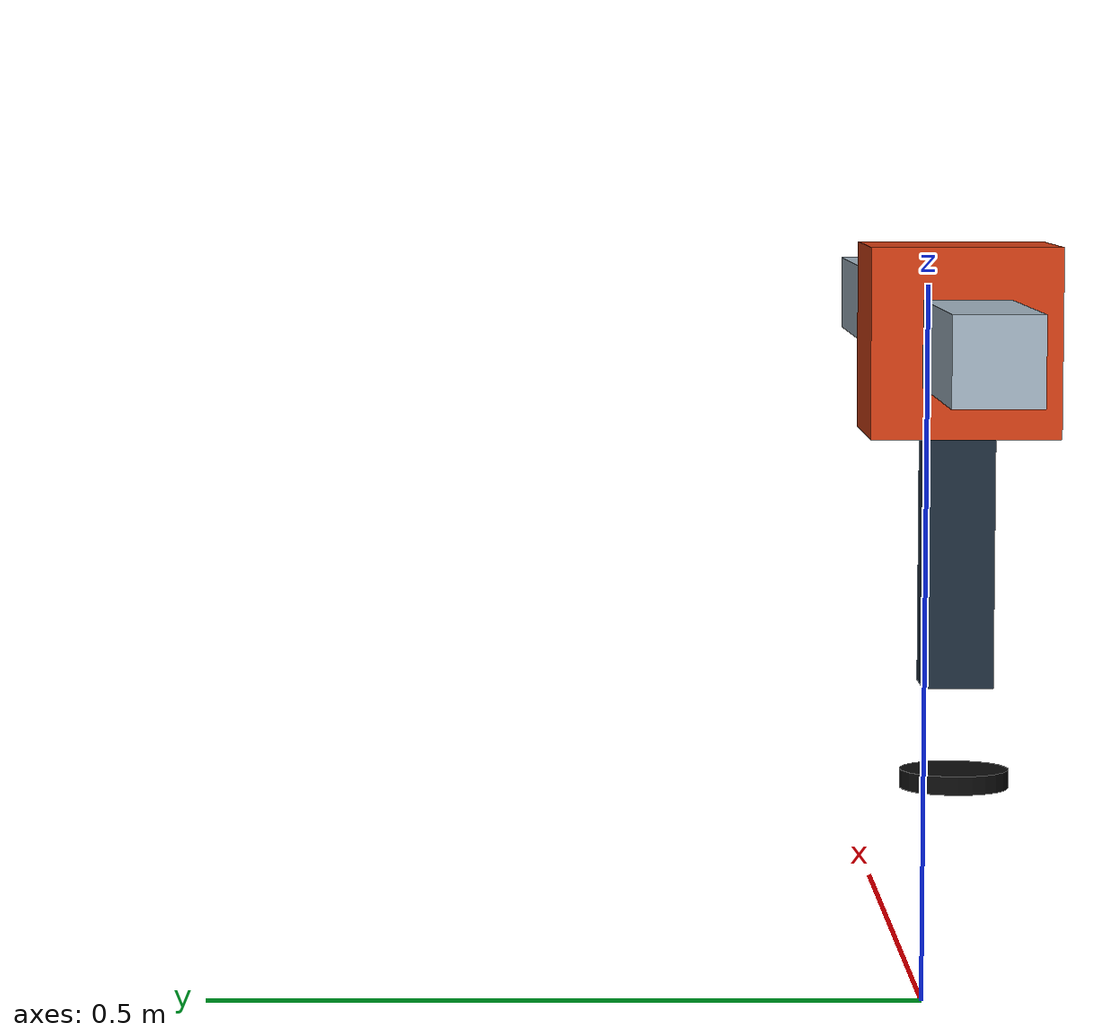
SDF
<?xml version='1.0' encoding='utf-8'?>
<sdf version="1.9">
  <model name="room_9_process_robot">
    <static>false</static>
    <self_collide>true</self_collide>
    <link name="base">
      <pose>0 0 0 0 0 0</pose>
      <inertial>
        <mass>8.0</mass>
        <inertia>
          <ixx>0.004033333333333333</ixx>
          <iyy>0.6036833333333332</iyy>
          <izz>0.6036833333333332</izz>
          <ixy>0</ixy>
          <ixz>0</ixz>
          <iyz>0</iyz>
        </inertia>
      </inertial>
      <visual name="rail">
        <pose>0 0 0.475 0 0 0</pose>
        <geometry>
          <box>
            <size>0.95 0.055 0.055</size>
          </box>
        </geometry>
        <material>
          <ambient>0.65 0.72 0.78 1</ambient>
          <diffuse>0.65 0.72 0.78 1</diffuse>
        </material>
      </visual>
      <collision name="rail_collision">
        <pose>0 0 0.475 0 0 0</pose>
        <geometry>
          <box>
            <size>0.95 0.055 0.055</size>
          </box>
        </geometry>
        <surface>
          <friction>
            <ode>
              <mu>0.9</mu>
              <mu2>0.9</mu2>
            </ode>
          </friction>
        </surface>
      </collision>
    </link>
    <joint name="world_fixed" type="fixed">
      <parent>world</parent>
      <child>base</child>
    </joint>
    <link name="carriage">
      <pose>-0.22 0 0.475 0 0 0</pose>
      <inertial>
        <mass>0.7</mass>
        <inertia>
          <ixx>0.0016799999999999999</ixx>
          <iyy>0.0016799999999999999</iyy>
          <izz>0.0016799999999999999</izz>
          <ixy>0</ixy>
          <ixz>0</ixz>
          <iyz>0</iyz>
        </inertia>
      </inertial>
      <visual name="carriage">
        <pose>0 0 0 0 0 0</pose>
        <geometry>
          <box>
            <size>0.12 0.12 0.12</size>
          </box>
        </geometry>
        <material>
          <ambient>.85 .25 .08 1</ambient>
          <diffuse>.85 .25 .08 1</diffuse>
        </material>
      </visual>
      <collision name="carriage_collision">
        <pose>0 0 0 0 0 0</pose>
        <geometry>
          <box>
            <size>0.12 0.12 0.12</size>
          </box>
        </geometry>
        <surface>
          <friction>
            <ode>
              <mu>0.9</mu>
              <mu2>0.9</mu2>
            </ode>
          </friction>
        </surface>
      </collision>
    </link>
    <joint name="room_9_process_x" type="prismatic">
      <parent>base</parent>
      <child>carriage</child>
      <axis>
        <xyz>1 0 0</xyz>
        <limit>
          <lower>0.0</lower>
          <upper>0.44</upper>
          <effort>100</effort>
          <velocity>0.12</velocity>
        </limit>
      </axis>
    </joint>
    <plugin filename="gz-sim-joint-position-controller-system" name="gz::sim::systems::JointPositionController">
      <joint_name>room_9_process_x</joint_name>
      <topic>/actuators/room_9_process_x</topic>
      <use_velocity_commands>true</use_velocity_commands>
      <cmd_max>0.2</cmd_max>
    </plugin>
    <link name="gripper">
      <pose>-0.22 0 0.293 0 0 0</pose>
      <inertial>
        <mass>0.25</mass>
        <inertia>
          <ixx>0.0002666666666666667</ixx>
          <iyy>0.0002666666666666667</iyy>
          <izz>0.0002666666666666667</izz>
          <ixy>0</ixy>
          <ixz>0</ixz>
          <iyz>0</iyz>
        </inertia>
      </inertial>
      <visual name="vertical_arm">
        <pose>0 0 0.05 0 0 0</pose>
        <geometry>
          <box>
            <size>0.045 0.045 0.18</size>
          </box>
        </geometry>
        <material>
          <ambient>.12 .18 .24 1</ambient>
          <diffuse>.12 .18 .24 1</diffuse>
        </material>
      </visual>
      <collision name="vertical_arm_collision">
        <pose>0 0 0.05 0 0 0</pose>
        <geometry>
          <box>
            <size>0.045 0.045 0.18</size>
          </box>
        </geometry>
        <surface>
          <friction>
            <ode>
              <mu>0.9</mu>
              <mu2>0.9</mu2>
            </ode>
          </friction>
        </surface>
      </collision>
      <visual name="vacuum_cup">
        <pose>0 0 -0.101 0 0 0</pose>
        <geometry>
          <cylinder>
            <radius>0.035</radius>
            <length>0.012</length>
          </cylinder>
        </geometry>
        <material>
          <ambient>.05 .05 .05 1</ambient>
          <diffuse>.05 .05 .05 1</diffuse>
        </material>
      </visual>
      <collision name="vacuum_cup_collision">
        <pose>0 0 -0.101 0 0 0</pose>
        <geometry>
          <cylinder>
            <radius>0.035</radius>
            <length>0.012</length>
          </cylinder>
        </geometry>
        <surface>
          <friction>
            <ode>
              <mu>0.9</mu>
              <mu2>0.9</mu2>
            </ode>
          </friction>
        </surface>
      </collision>
    </link>
    <joint name="room_9_process_z" type="prismatic">
      <parent>carriage</parent>
      <child>gripper</child>
      <axis>
        <xyz>0 0 1</xyz>
        <limit>
          <lower>-0.03</lower>
          <upper>0.0</upper>
          <effort>100</effort>
          <velocity>0.12</velocity>
        </limit>
      </axis>
    </joint>
    <plugin filename="gz-sim-joint-position-controller-system" name="gz::sim::systems::JointPositionController">
      <joint_name>room_9_process_z</joint_name>
      <topic>/actuators/room_9_process_z</topic>
      <use_velocity_commands>true</use_velocity_commands>
      <cmd_max>0.1</cmd_max>
    </plugin>
    <plugin filename="gz-sim-detachable-joint-system" name="gz::sim::systems::DetachableJoint">
      <parent_link>gripper</parent_link>
      <child_model>wafer</child_model>
      <child_link>body</child_link>
      <attach_topic>/attachments/process_9/attach</attach_topic>
      <detach_topic>/attachments/process_9/detach</detach_topic>
      <output_topic>/attachments/process_9/state</output_topic>
    </plugin>
    <plugin filename="gz-sim-joint-state-publisher-system" name="gz::sim::systems::JointStatePublisher">
      <topic>/process/room_9/joint_states</topic>
    </plugin>
  </model>
</sdf>
